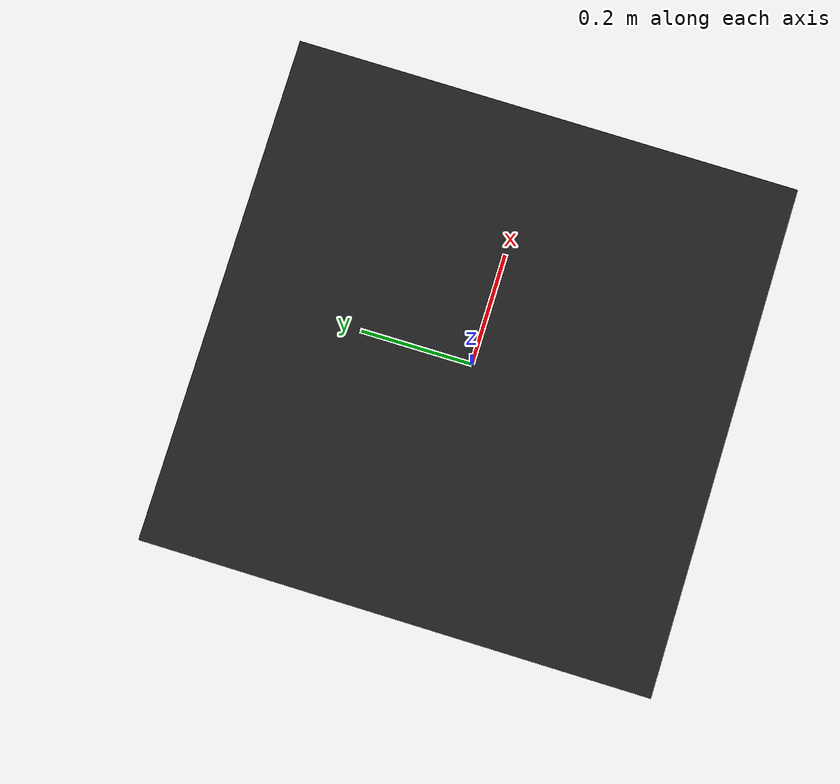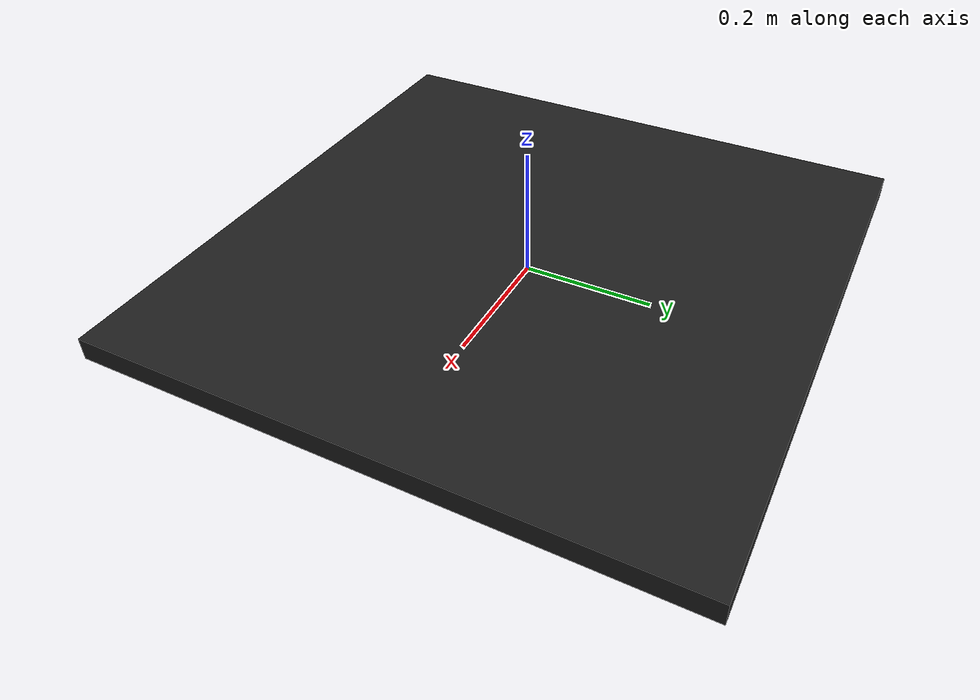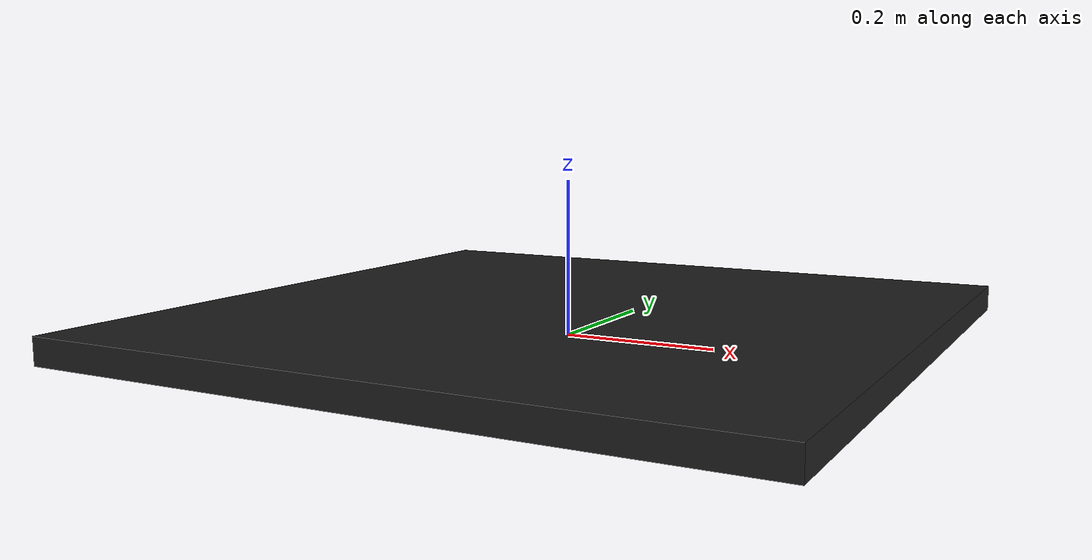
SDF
<?xml version="1.0" ?>
<sdf version="1.5">
  <model name="hac_black_panel">
    <link name="link">
      <pose>0 0 0.0175 0 0 0</pose>
      <inertial>
        <mass>10</mass>
        <inertia>
          <ixx>0.067602</ixx>
          <ixy>0</ixy>
          <ixz>0</ixz>
          <iyy>0.067602</iyy>
          <iyz>0</iyz>
          <izz>0.135</izz>
        </inertia>
      </inertial>

      <collision name='collision'>
        <geometry>
          <box>
            <size>0.9 0.9 0.035</size>
          </box>
        </geometry>
      </collision>

      <visual name='visual'>
        <geometry>
          <box>
            <size>0.9 0.9 0.035</size>
          </box>
        </geometry>
        <material>
          <script>
            <uri>file://media/materials/scripts/gazebo.material</uri>
            <name>Gazebo/Black</name>
          </script>
        </material>
      </visual>
    </link>

  </model>
</sdf>
